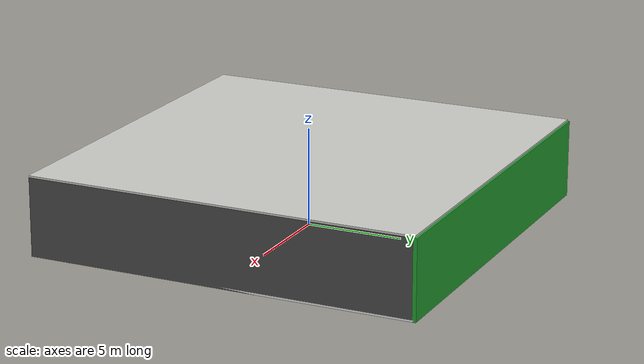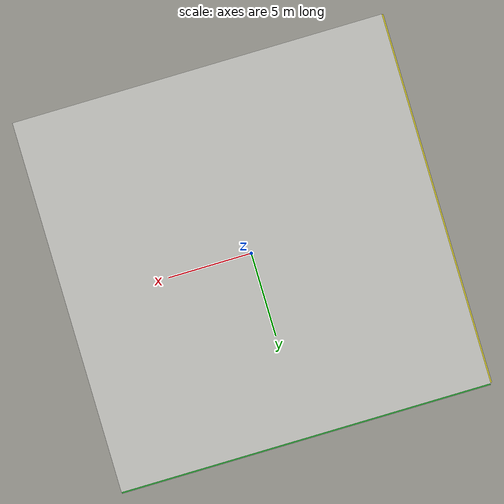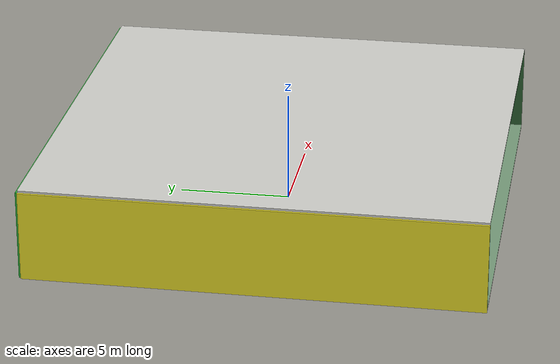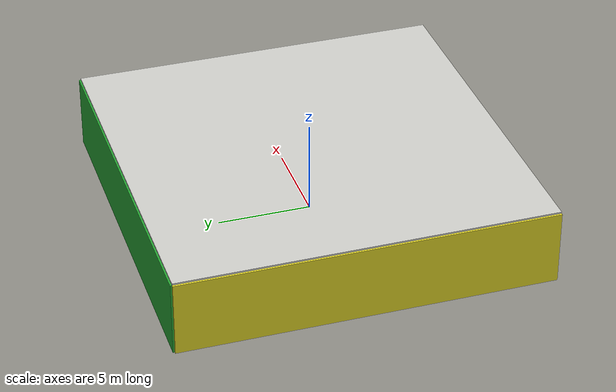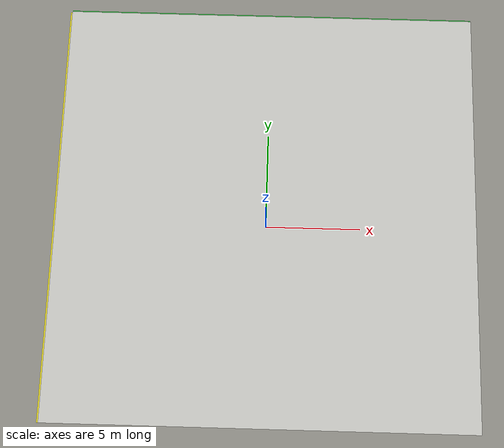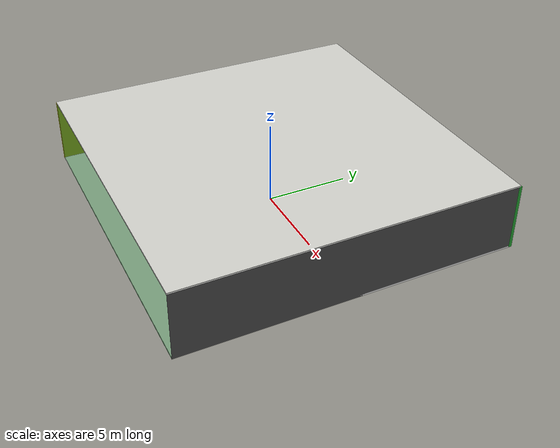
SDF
<sdf version="1.4">
 <world name="default">
  <physics type="ode">
   <max_step_size>0.001</max_step_size>
   <real_time_factor>1</real_time_factor>
   <real_time_update_rate>1000</real_time_update_rate>
   <gravity>0 0 -9.8</gravity>
  </physics>
  <scene><ambient>0.4 0.4 0.4 1</ambient><background>0.7 0.7 0.7 1</background><shadows>1</shadows></scene>
  <model name="Surrounding">
   <static>1</static>
   <link name="Ceiling">
    <collision name="Ceiling_Collision"><geometry><box><size>20 20 0.1</size></box></geometry></collision>
    <visual name="Ceiling_Visual">
     <geometry><box><size>20 20 0.1</size></box></geometry>
     <material>
      <script><uri>file://media/materials/scripts/gazebo.material</uri><name>Gazebo/CeilingTiled</name></script>
     </material>
    </visual>
    <pose>0 0 4.05 0 0 0</pose>
   </link>
   <link name="Wall_South">
    <collision name="Wall_South_Collision">
     <geometry><box><size>20 0 4</size></box></geometry>
     <pose>0 0 2 0 -0 0</pose>
    </collision>
    <visual name="Wall_South_Visual">
     <pose>0 0 2 0 -0 0</pose>
     <geometry><box><size>20 0 4</size></box></geometry>
     <material>
      <script><uri>file://media/materials/scripts/gazebo.material</uri><name>Gazebo/GreenTransparent</name></script>
     </material>
    </visual>
    <velocity_decay><linear>0</linear><angular>0</angular></velocity_decay>
    <pose>0 -10 0 0 -0 0</pose>
   </link>
   <link name="Wall_East">
    <collision name="Wall_21_Collision">
     <geometry><box><size>20 0 4</size></box></geometry>
     <pose>0 0 2 0 -0 0</pose>
    </collision>
    <visual name="Wall_21_Visual">
     <pose>0 0 2 0 -0 0</pose>
     <geometry><box><size>20 0 4</size></box></geometry>
     <material>
      <script><uri>file://media/materials/scripts/gazebo.material</uri><name>Gazebo/Road</name></script>
     </material>
    </visual>
    <velocity_decay><linear>0</linear><angular>0</angular></velocity_decay>
    <pose>10 0 0 0 -0 1.5708</pose>
   </link>
   <link name="Wall_North">
    <collision name="Wall_22_Collision">
     <geometry><box><size>20 0.2 4</size></box></geometry>
     <pose>0 0 2 0 -0 0</pose>
    </collision>
    <visual name="Wall_22_Visual">
     <pose>0 0 2 0 -0 0</pose>
     <geometry><box><size>20 0.2 4</size></box></geometry>
     <material>
      <script><uri>file://media/materials/scripts/gazebo.material</uri><name>Gazebo/GreenGlow</name></script>
     </material>
    </visual>
    <velocity_decay><linear>0</linear><angular>0</angular></velocity_decay>
    <pose>0 10 0 0 -0 0</pose>
   </link>
   <link name="Wall_West">
    <collision name="Wall_23_Collision">
     <geometry><box><size>20 0.2 4</size></box></geometry>
     <pose>0 0 2 0 -0 0</pose>
    </collision>
    <visual name="Wall_23_Visual">
     <pose>0 0 2 0 -0 0</pose>
     <geometry><box><size>20 0.2 4</size></box></geometry>
     <material>
      <script><uri>file://media/materials/scripts/gazebo.material</uri><name>Gazebo/Yellow</name></script>
     </material>
    </visual>
    <velocity_decay><linear>0</linear><angular>0</angular></velocity_decay>
    <pose>-10 0 0 0 0 -1.5708</pose>
   </link>
   <link name="Ground_link">
    <collision name="collision">
     <pose>0 0 .05 0 -0 0</pose>
     <geometry><box><size>20 20 0.1</size></box></geometry>
    </collision>
    <visual name="visual">
     <pose>0 0 .05 0 -0 0</pose>
     <geometry><box><size>20 20 0.1</size></box></geometry>
     <material>
      <script><uri>file://media/materials/scripts/gazebo.material</uri><name>Gazebo/White</name></script>
     </material>
    </visual>
   </link>
   <static>1</static>
  </model>
  <spherical_coordinates>
   <surface_model>EARTH_WGS84</surface_model>
   <latitude_deg>0</latitude_deg>
   <longitude_deg>0</longitude_deg>
   <elevation>0</elevation>
   <heading_deg>0</heading_deg>
  </spherical_coordinates>
  <light name="lightball_0" type="diffuse">
   <diffuse>0.8 0.8 0.8 1</diffuse>
   <specular>0.2 0.2 0.2 1</specular>
   <attenuation>
    <range>100</range>
    <constant>0.7</constant>
    <linear>0.01</linear>
    <quadratic>0.001</quadratic>
   </attenuation>
   <direction>-0.5 0.1 -0.9</direction>
   <pose>-0.245790546086 5.96892374593 3.03784251856 0 0 0</pose>
  </light>
  <light name="lightball_1" type="diffuse">
   <diffuse>0.8 0.8 0.8 1</diffuse>
   <specular>0.2 0.2 0.2 1</specular>
   <attenuation>
    <range>100</range>
    <constant>0.7</constant>
    <linear>0.01</linear>
    <quadratic>0.001</quadratic>
   </attenuation>
   <direction>-0.5 0.1 -0.9</direction>
   <pose>-3.02419343787 1.14153436011 0.932659347099 0 0 0</pose>
  </light>
  <light name="lightball_2" type="diffuse">
   <diffuse>0.8 0.8 0.8 1</diffuse>
   <specular>0.2 0.2 0.2 1</specular>
   <attenuation>
    <range>100</range>
    <constant>0.7</constant>
    <linear>0.01</linear>
    <quadratic>0.001</quadratic>
   </attenuation>
   <direction>-0.5 0.1 -0.9</direction>
   <pose>3.20613821679 -5.65275433595 0.908784875399 0 0 0</pose>
  </light>
  <light name="lightball_3" type="diffuse">
   <diffuse>0.8 0.8 0.8 1</diffuse>
   <specular>0.2 0.2 0.2 1</specular>
   <attenuation>
    <range>100</range>
    <constant>0.7</constant>
    <linear>0.01</linear>
    <quadratic>0.001</quadratic>
   </attenuation>
   <direction>-0.5 0.1 -0.9</direction>
   <pose>7.91702543273 -3.29028910921 1.60617898544 0 0 0</pose>
  </light>
  <light name="lightball_4" type="diffuse">
   <diffuse>0.8 0.8 0.8 1</diffuse>
   <specular>0.2 0.2 0.2 1</specular>
   <attenuation>
    <range>100</range>
    <constant>0.7</constant>
    <linear>0.01</linear>
    <quadratic>0.001</quadratic>
   </attenuation>
   <direction>-0.5 0.1 -0.9</direction>
   <pose>6.34202606032 -8.19043384514 1.53007687161 0 0 0</pose>
  </light>
  <light name="lightball_5" type="diffuse">
   <diffuse>0.8 0.8 0.8 1</diffuse>
   <specular>0.2 0.2 0.2 1</specular>
   <attenuation>
    <range>100</range>
    <constant>0.7</constant>
    <linear>0.01</linear>
    <quadratic>0.001</quadratic>
   </attenuation>
   <direction>-0.5 0.1 -0.9</direction>
   <pose>5.99544262744 4.05871969643 2.48995027808 0 0 0</pose>
  </light>
  <light name="lightball_6" type="diffuse">
   <diffuse>0.8 0.8 0.8 1</diffuse>
   <specular>0.2 0.2 0.2 1</specular>
   <attenuation>
    <range>100</range>
    <constant>0.7</constant>
    <linear>0.01</linear>
    <quadratic>0.001</quadratic>
   </attenuation>
   <direction>-0.5 0.1 -0.9</direction>
   <pose>6.49111935589 -8.02662060807 0.58953724272 0 0 0</pose>
  </light>
  <light name="lightball_7" type="diffuse">
   <diffuse>0.8 0.8 0.8 1</diffuse>
   <specular>0.2 0.2 0.2 1</specular>
   <attenuation>
    <range>100</range>
    <constant>0.7</constant>
    <linear>0.01</linear>
    <quadratic>0.001</quadratic>
   </attenuation>
   <direction>-0.5 0.1 -0.9</direction>
   <pose>1.65791597956 1.05150702777 3.42680298564 0 0 0</pose>
  </light>
  <light name="lightball_8" type="diffuse">
   <diffuse>0.8 0.8 0.8 1</diffuse>
   <specular>0.2 0.2 0.2 1</specular>
   <attenuation>
    <range>100</range>
    <constant>0.7</constant>
    <linear>0.01</linear>
    <quadratic>0.001</quadratic>
   </attenuation>
   <direction>-0.5 0.1 -0.9</direction>
   <pose>1.33742201132 -4.2972797677 3.09471275193 0 0 0</pose>
  </light>
  <light name="lightball_9" type="diffuse">
   <diffuse>0.8 0.8 0.8 1</diffuse>
   <specular>0.2 0.2 0.2 1</specular>
   <attenuation>
    <range>100</range>
    <constant>0.7</constant>
    <linear>0.01</linear>
    <quadratic>0.001</quadratic>
   </attenuation>
   <direction>-0.5 0.1 -0.9</direction>
   <pose>2.13150317729 2.305299366 0.568837306134 0 0 0</pose>
  </light>
  <include>
   <uri>model://construction_cone</uri>
   <pose>-7.88055294499 3.96407000431 0 0 0 1.47158154925</pose>
  </include>
  <include><uri>model://cabinet</uri><pose>-5.26093434368 -7.19921463045 0 0 0 0.0436528745772</pose></include>
  <include>
   <uri>model://construction_cone</uri>
   <pose>-1.67072181306 -6.83170950372 0 0 0 2.3655265941</pose>
  </include>
  <include><uri>model://table</uri><pose>7.4752978462 5.07042532305 0 0 0 2.71041455493</pose></include>
 </world>
</sdf>

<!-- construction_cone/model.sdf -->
<sdf version="1.5">
  <model name="Construction Cone">
    <link name="link">
      <collision name="collision">
        <geometry>
          <mesh>
            <scale>10 10 10</scale>
            <uri>file://isr-testbed/construction_cone/meshes/construction_cone.dae</uri>
          </mesh>
        </geometry>
      </collision>
      <visual name="visual">
        <geometry>
          <mesh>
            <scale>10 10 10</scale>
            <uri>file://isr-testbed/construction_cone/meshes/construction_cone.dae</uri>
          </mesh>
        </geometry>
      </visual>
    </link>
  </model>
</sdf>

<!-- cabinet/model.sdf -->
<sdf version="1.5">
  <model name="cabinet">
    <static>true</static>
    <link name="cabinet_bottom_plate">
      <inertial>
        <pose>0 0 -1 0 0 0</pose>
        <inertia>
          <ixx>2.050000</ixx>
          <ixy>0</ixy>
          <ixz>0</ixz>
          <iyy>2.050000</iyy>
          <iyz>0</iyz>
          <izz>2.050000</izz>
        </inertia>
        <mass>25.000000</mass>
      </inertial>
      <collision name="cabinet_bottom_plate_geom">
        <pose>0 0 0.010000 0 0 0</pose>
        <geometry>
          <box>
            <size>0.450000 0.450000 0.020000</size>
          </box>
        </geometry>
      </collision>
      <visual name="cabinet_bottom_plate_geom_visual">
        <pose>0 0 0.010000 0 0 0</pose>
        <geometry>
          <box>
            <size>0.450000 0.450000 0.020000</size>
          </box>
        </geometry>
        <material>
          <script>
            <uri>model://media/materials/scripts/gazebo.material</uri>
            <name>Gazebo/Wood</name>
          </script>
        </material>
      </visual>
      <collision name="cabinet_bottom_plate_geom_cabinet_back_plate">
        <pose>0.235000 0 0.510000 0 0 0</pose>
        <geometry>
          <box>
            <size>0.020000 0.450000 1.020000</size>
          </box>
        </geometry>
      </collision>
      <visual name="cabinet_bottom_plate_geom_cabinet_back_plate_visual">
        <pose>0.235000 0 0.510000 0 0 0</pose>
        <geometry>
          <box>
            <size>0.020000 0.450000 1.020000</size>
          </box>
        </geometry>
        <material>
          <script>
            <uri>model://media/materials/scripts/gazebo.material</uri>
            <name>Gazebo/Wood</name>
          </script>
        </material>
      </visual>
      <collision name="cabinet_bottom_plate_geom_cabinet_left_plate">
        <pose>0 0.235000 0.510000 0 0 0</pose>
        <geometry>
          <box>
            <size>0.450000 0.020000 1.020000</size>
          </box>
        </geometry>
      </collision>
      <visual name="cabinet_bottom_plate_geom_cabinet_left_plate_visual">
        <pose>0 0.235000 0.510000 0 0 0</pose>
        <geometry>
          <box>
            <size>0.450000 0.020000 1.020000</size>
          </box>
        </geometry>
        <material>
          <script>
            <uri>model://media/materials/scripts/gazebo.material</uri>
            <name>Gazebo/Wood</name>
          </script>
        </material>
      </visual>
      <collision name="cabinet_bottom_plate_geom_cabinet_middle_plate">
        <pose>0 0 0.510000 0 0 0</pose>
        <geometry>
          <box>
            <size>0.450000 0.450000 0.020000</size>
          </box>
        </geometry>
      </collision>
      <visual name="cabinet_bottom_plate_geom_cabinet_middle_plate_visual">
        <pose>0 0 0.510000 0 0 0</pose>
        <geometry>
          <box>
            <size>0.450000 0.450000 0.020000</size>
          </box>
        </geometry>
        <material>
          <script>
            <uri>model://media/materials/scripts/gazebo.material</uri>
            <name>Gazebo/Wood</name>
          </script>
        </material>
      </visual>
      <collision name="cabinet_bottom_plate_geom_cabinet_right_plate">
        <pose>0 -0.235000 0.510000 0 0 0</pose>
        <geometry>
          <box>
            <size>0.450000 0.020000 1.020000</size>
          </box>
        </geometry>
      </collision>
      <visual name="cabinet_bottom_plate_geom_cabinet_right_plate_visual">
        <pose>0 -0.235000 0.510000 0 0 0</pose>
        <geometry>
          <box>
            <size>0.450000 0.020000 1.020000</size>
          </box>
        </geometry>
        <material>
          <script>
            <uri>model://media/materials/scripts/gazebo.material</uri>
            <name>Gazebo/Wood</name>
          </script>
        </material>
      </visual>
      <collision name="cabinet_bottom_plate_geom_cabinet_top_plate">
        <pose>0 0 1.010000 0 0 0</pose>
        <geometry>
          <box>
            <size>0.450000 0.450000 0.020000</size>
          </box>
        </geometry>
      </collision>
      <visual name="cabinet_bottom_plate_geom_cabinet_top_plate_visual">
        <pose>0 0 1.010000 0 0 0</pose>
        <geometry>
          <box>
            <size>0.450000 0.450000 0.020000</size>
          </box>
        </geometry>
        <material>
          <script>
            <uri>model://media/materials/scripts/gazebo.material</uri>
            <name>Gazebo/Wood</name>
          </script>
        </material>
      </visual>
    </link>
  </model>
</sdf>

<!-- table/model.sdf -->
<sdf version="1.5">
  <model name="table">
    <static>true</static>
    <link name="link">
      <collision name="surface">
        <pose>0 0 1.0 0 0 0</pose>
        <geometry>
          <box>
            <size>1.5 0.8 0.03</size>
          </box>
        </geometry>
        <surface>
          <friction>
            <ode>
              <mu>0.6</mu>
              <mu2>0.6</mu2>
            </ode>
          </friction>
        </surface>
      </collision>
      <visual name="visual1">
        <pose>0 0 1.0 0 0 0</pose>
        <geometry>
          <box>
            <size>1.5 0.8 0.03</size>
          </box>
        </geometry>
        <material>
          <script>
            <uri>model://media/materials/scripts/gazebo.material</uri>
            <name>Gazebo/Wood</name>
          </script>
        </material>
      </visual>
      <collision name="front_left_leg">
        <pose>0.68 0.38 0.5 0 0 0</pose>
        <geometry>
          <cylinder>
            <radius>0.02</radius>
            <length>1.0</length>
          </cylinder>
        </geometry>
      </collision>
      <visual name="front_left_leg">
        <pose>0.68 0.38 0.5 0 0 0</pose>
        <geometry>
          <cylinder>
            <radius>0.02</radius>
            <length>1.0</length>
          </cylinder>
        </geometry>
        <material>
          <script>
            <uri>model://media/materials/scripts/gazebo.material</uri>
            <name>Gazebo/Grey</name>
          </script>
        </material>
      </visual>
      <collision name="front_right_leg">
        <pose>0.68 -0.38 0.5 0 0 0</pose>
        <geometry>
          <cylinder>
            <radius>0.02</radius>
            <length>1.0</length>
          </cylinder>
        </geometry>
      </collision>
      <visual name="front_right_leg">
        <pose>0.68 -0.38 0.5 0 0 0</pose>
        <geometry>
          <cylinder>
            <radius>0.02</radius>
            <length>1.0</length>
          </cylinder>
        </geometry>
        <material>
          <script>
            <uri>model://media/materials/scripts/gazebo.material</uri>
            <name>Gazebo/Grey</name>
          </script>
        </material>
      </visual>
      <collision name="back_right_leg">
        <pose>-0.68 -0.38 0.5 0 0 0</pose>
        <geometry>
          <cylinder>
            <radius>0.02</radius>
            <length>1.0</length>
          </cylinder>
        </geometry>
      </collision>
      <visual name="back_right_leg">
        <pose>-0.68 -0.38 0.5 0 0 0</pose>
        <geometry>
          <cylinder>
            <radius>0.02</radius>
            <length>1.0</length>
          </cylinder>
        </geometry>
        <material>
          <script>
            <uri>model://media/materials/scripts/gazebo.material</uri>
            <name>Gazebo/Grey</name>
          </script>
        </material>
      </visual>
      <collision name="back_left_leg">
        <pose>-0.68 0.38 0.5 0 0 0</pose>
        <geometry>
          <cylinder>
            <radius>0.02</radius>
            <length>1.0</length>
          </cylinder>
        </geometry>
      </collision>
      <visual name="back_left_leg">
        <pose>-0.68 0.38 0.5 0 0 0</pose>
        <geometry>
          <cylinder>
            <radius>0.02</radius>
            <length>1.0</length>
          </cylinder>
        </geometry>
        <material>
          <script>
            <uri>model://media/materials/scripts/gazebo.material</uri>
            <name>Gazebo/Grey</name>
          </script>
        </material>
      </visual>
    </link>
  </model>
</sdf>
